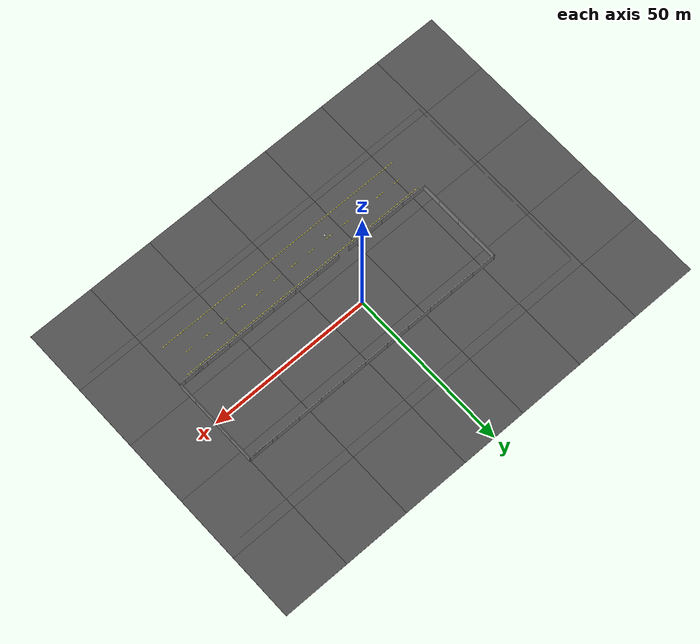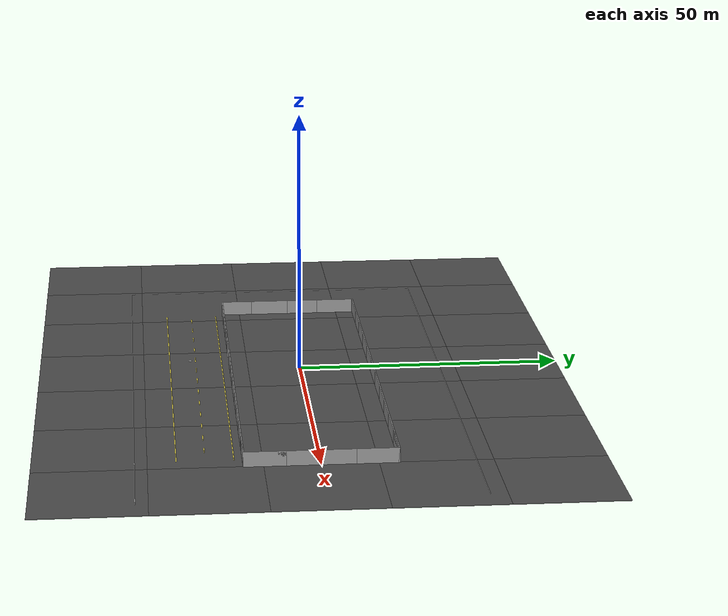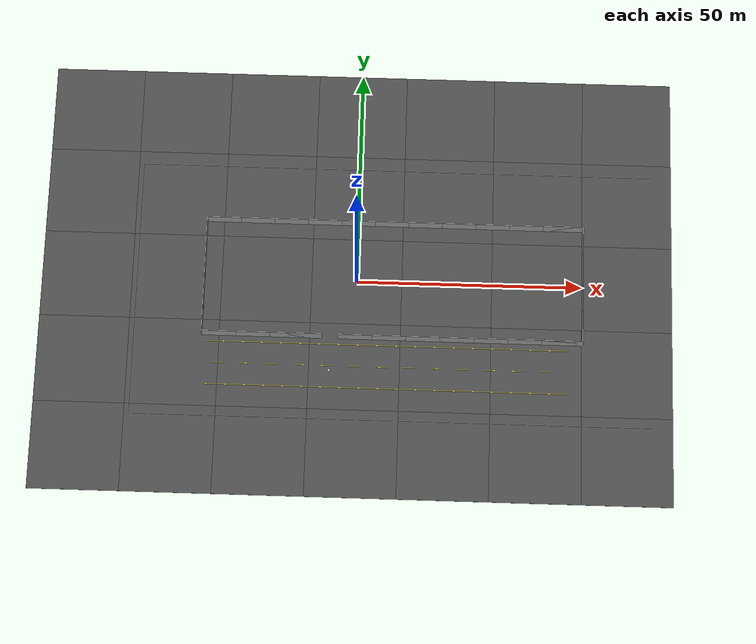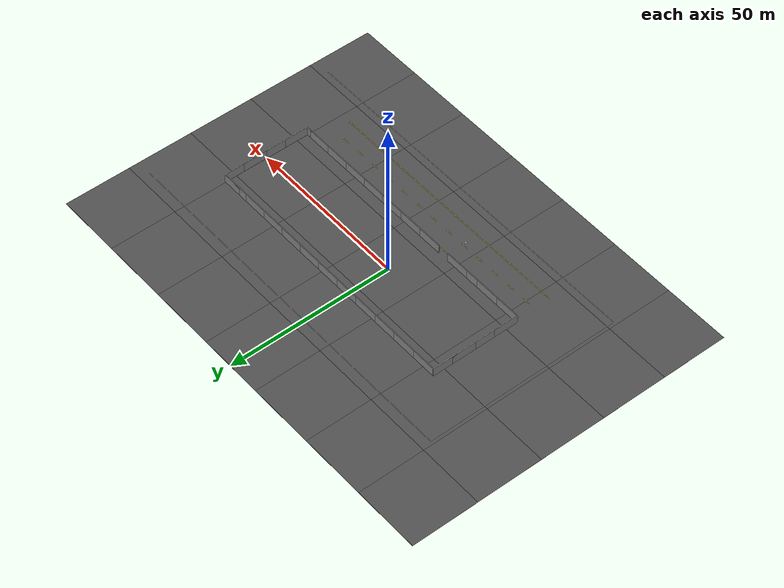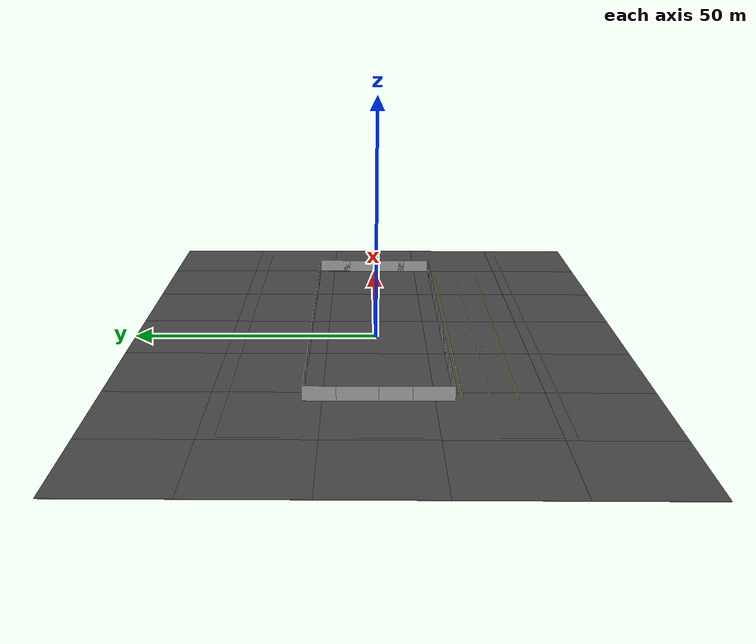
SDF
<sdf version="1.7">
 <world name="default">
  <light name="sun" type="directional">
   <pose>0 0 10 0 -0 0</pose>
   <diffuse>0.8 0.8 0.8 1</diffuse>
   <specular>0.2 0.2 0.2 1</specular>
   <attenuation>
    <range>1000</range>
    <constant>0.9</constant>
    <linear>0.01</linear>
    <quadratic>0.001</quadratic>
   </attenuation>
   <direction>-0.5 0.1 -0.9</direction>
   <spot><inner_angle>0</inner_angle><outer_angle>0</outer_angle><falloff>0</falloff></spot>
  </light>
  <gravity>0 0 -9.8</gravity>
  <magnetic_field>6e-06 2.3e-05 -4.2e-05</magnetic_field>
  <atmosphere type="adiabatic"/>
  <physics name="default_physics" default="0" type="ode">
   <max_step_size>0.001</max_step_size>
   <real_time_factor>1</real_time_factor>
   <real_time_update_rate>1000</real_time_update_rate>
  </physics>
  <scene><ambient>0.4 0.4 0.4 1</ambient><background>0.7 0.7 0.7 1</background><shadows>1</shadows></scene>
  <spherical_coordinates>
   <surface_model>EARTH_WGS84</surface_model>
   <latitude_deg>0</latitude_deg>
   <longitude_deg>0</longitude_deg>
   <elevation>0</elevation>
   <heading_deg>0</heading_deg>
  </spherical_coordinates>
  <audio><device>default</device></audio>
  <model name="grey_wall">
   <static>1</static>
   <link name="link">
    <pose>0 0 1.4 0 -0 0</pose>
    <collision name="collision"><geometry><box><size>7.5 0.2 2.8</size></box></geometry></collision>
    <visual name="visual">
     <cast_shadows>0</cast_shadows>
     <geometry><box><size>7.5 0.2 2.8</size></box></geometry>
     <material>
      <script>
       <uri>model://grey_wall/materials/scripts</uri>
       <uri>model://grey_wall/materials/textures</uri>
       <name>vrc/grey_wall</name>
      </script>
     </material>
    </visual>
   </link>
   <pose>0 -13.5 0 0 -0 0</pose>
  </model>
  <model name="grey_wall_0">
   <static>1</static>
   <link name="link">
    <pose>0 0 1.4 0 -0 0</pose>
    <collision name="collision"><geometry><box><size>7.5 0.2 2.8</size></box></geometry></collision>
    <visual name="visual">
     <cast_shadows>0</cast_shadows>
     <geometry><box><size>7.5 0.2 2.8</size></box></geometry>
     <material>
      <script>
       <uri>model://grey_wall/materials/scripts</uri>
       <uri>model://grey_wall/materials/textures</uri>
       <name>vrc/grey_wall</name>
      </script>
     </material>
    </visual>
   </link>
   <pose>7.5 -13.5 0 0 -0 0</pose>
  </model>
  <model name="grey_wall_1">
   <static>1</static>
   <link name="link">
    <pose>0 0 1.4 0 -0 0</pose>
    <collision name="collision"><geometry><box><size>7.5 0.2 2.8</size></box></geometry></collision>
    <visual name="visual">
     <cast_shadows>0</cast_shadows>
     <geometry><box><size>7.5 0.2 2.8</size></box></geometry>
     <material>
      <script>
       <uri>model://grey_wall/materials/scripts</uri>
       <uri>model://grey_wall/materials/textures</uri>
       <name>vrc/grey_wall</name>
      </script>
     </material>
    </visual>
   </link>
   <pose>-11 -13.5 0 0 -0 0</pose>
  </model>
  <model name="grey_wall_2">
   <static>1</static>
   <link name="link">
    <pose>0 0 1.4 0 -0 0</pose>
    <collision name="collision"><geometry><box><size>7.5 0.2 2.8</size></box></geometry></collision>
    <visual name="visual">
     <cast_shadows>0</cast_shadows>
     <geometry><box><size>7.5 0.2 2.8</size></box></geometry>
     <material>
      <script>
       <uri>model://grey_wall/materials/scripts</uri>
       <uri>model://grey_wall/materials/textures</uri>
       <name>vrc/grey_wall</name>
      </script>
     </material>
    </visual>
   </link>
   <pose>7.5 13.5 0 0 -0 0</pose>
  </model>
  <model name="grey_wall_3">
   <static>1</static>
   <link name="link">
    <pose>0 0 1.4 0 -0 0</pose>
    <collision name="collision"><geometry><box><size>7.5 0.2 2.8</size></box></geometry></collision>
    <visual name="visual">
     <cast_shadows>0</cast_shadows>
     <geometry><box><size>7.5 0.2 2.8</size></box></geometry>
     <material>
      <script>
       <uri>model://grey_wall/materials/scripts</uri>
       <uri>model://grey_wall/materials/textures</uri>
       <name>vrc/grey_wall</name>
      </script>
     </material>
    </visual>
   </link>
   <pose>0 13.5 0 0 -0 0</pose>
  </model>
  <model name="grey_wall_4">
   <static>1</static>
   <link name="link">
    <pose>0 0 1.4 0 -0 0</pose>
    <collision name="collision"><geometry><box><size>7.5 0.2 2.8</size></box></geometry></collision>
    <visual name="visual">
     <cast_shadows>0</cast_shadows>
     <geometry><box><size>7.5 0.2 2.8</size></box></geometry>
     <material>
      <script>
       <uri>model://grey_wall/materials/scripts</uri>
       <uri>model://grey_wall/materials/textures</uri>
       <name>vrc/grey_wall</name>
      </script>
     </material>
    </visual>
   </link>
   <pose>-7.5 13.5 0 0 -0 0</pose>
  </model>
  <model name="grey_wall_5">
   <static>1</static>
   <link name="link">
    <pose>0 0 1.4 0 -0 0</pose>
    <collision name="collision"><geometry><box><size>7.5 0.2 2.8</size></box></geometry></collision>
    <visual name="visual">
     <cast_shadows>0</cast_shadows>
     <geometry><box><size>7.5 0.2 2.8</size></box></geometry>
     <material>
      <script>
       <uri>model://grey_wall/materials/scripts</uri>
       <uri>model://grey_wall/materials/textures</uri>
       <name>vrc/grey_wall</name>
      </script>
     </material>
    </visual>
   </link>
   <pose>30 -13.5 0 0 -0 0</pose>
  </model>
  <model name="grey_wall_6">
   <static>1</static>
   <link name="link">
    <pose>0 0 1.4 0 -0 0</pose>
    <collision name="collision"><geometry><box><size>7.5 0.2 2.8</size></box></geometry></collision>
    <visual name="visual">
     <cast_shadows>0</cast_shadows>
     <geometry><box><size>7.5 0.2 2.8</size></box></geometry>
     <material>
      <script>
       <uri>model://grey_wall/materials/scripts</uri>
       <uri>model://grey_wall/materials/textures</uri>
       <name>vrc/grey_wall</name>
      </script>
     </material>
    </visual>
   </link>
   <pose>15 -13.5 0 0 -0 0</pose>
  </model>
  <model name="grey_wall_7">
   <static>1</static>
   <link name="link">
    <pose>0 0 1.4 0 -0 0</pose>
    <collision name="collision"><geometry><box><size>7.5 0.2 2.8</size></box></geometry></collision>
    <visual name="visual">
     <cast_shadows>0</cast_shadows>
     <geometry><box><size>7.5 0.2 2.8</size></box></geometry>
     <material>
      <script>
       <uri>model://grey_wall/materials/scripts</uri>
       <uri>model://grey_wall/materials/textures</uri>
       <name>vrc/grey_wall</name>
      </script>
     </material>
    </visual>
   </link>
   <pose>22.5 -13.5 0 0 -0 0</pose>
  </model>
  <model name="grey_wall_8">
   <static>1</static>
   <link name="link">
    <pose>0 0 1.4 0 -0 0</pose>
    <collision name="collision"><geometry><box><size>7.5 0.2 2.8</size></box></geometry></collision>
    <visual name="visual">
     <cast_shadows>0</cast_shadows>
     <geometry><box><size>7.5 0.2 2.8</size></box></geometry>
     <material>
      <script>
       <uri>model://grey_wall/materials/scripts</uri>
       <uri>model://grey_wall/materials/textures</uri>
       <name>vrc/grey_wall</name>
      </script>
     </material>
    </visual>
   </link>
   <pose>-15 -13.5 0 0 -0 0</pose>
  </model>
  <model name="grey_wall_9">
   <static>1</static>
   <link name="link">
    <pose>0 0 1.4 0 -0 0</pose>
    <collision name="collision"><geometry><box><size>7.5 0.2 2.8</size></box></geometry></collision>
    <visual name="visual">
     <cast_shadows>0</cast_shadows>
     <geometry><box><size>7.5 0.2 2.8</size></box></geometry>
     <material>
      <script>
       <uri>model://grey_wall/materials/scripts</uri>
       <uri>model://grey_wall/materials/textures</uri>
       <name>vrc/grey_wall</name>
      </script>
     </material>
    </visual>
   </link>
   <pose>-22.5 -13.5 0 0 -0 0</pose>
  </model>
  <model name="grey_wall_10">
   <static>1</static>
   <link name="link">
    <pose>0 0 1.4 0 -0 0</pose>
    <collision name="collision"><geometry><box><size>7.5 0.2 2.8</size></box></geometry></collision>
    <visual name="visual">
     <cast_shadows>0</cast_shadows>
     <geometry><box><size>7.5 0.2 2.8</size></box></geometry>
     <material>
      <script>
       <uri>model://grey_wall/materials/scripts</uri>
       <uri>model://grey_wall/materials/textures</uri>
       <name>vrc/grey_wall</name>
      </script>
     </material>
    </visual>
   </link>
   <pose>-30 -13.5 0 0 -0 0</pose>
  </model>
  <model name="grey_wall_11">
   <static>1</static>
   <link name="link">
    <pose>0 0 1.4 0 -0 0</pose>
    <collision name="collision"><geometry><box><size>7.5 0.2 2.8</size></box></geometry></collision>
    <visual name="visual">
     <cast_shadows>0</cast_shadows>
     <geometry><box><size>7.5 0.2 2.8</size></box></geometry>
     <material>
      <script>
       <uri>model://grey_wall/materials/scripts</uri>
       <uri>model://grey_wall/materials/textures</uri>
       <name>vrc/grey_wall</name>
      </script>
     </material>
    </visual>
   </link>
   <pose>15 13.5 0 0 -0 0</pose>
  </model>
  <model name="grey_wall_12">
   <static>1</static>
   <link name="link">
    <pose>0 0 1.4 0 -0 0</pose>
    <collision name="collision"><geometry><box><size>7.5 0.2 2.8</size></box></geometry></collision>
    <visual name="visual">
     <cast_shadows>0</cast_shadows>
     <geometry><box><size>7.5 0.2 2.8</size></box></geometry>
     <material>
      <script>
       <uri>model://grey_wall/materials/scripts</uri>
       <uri>model://grey_wall/materials/textures</uri>
       <name>vrc/grey_wall</name>
      </script>
     </material>
    </visual>
   </link>
   <pose>22.5 13.5 0 0 -0 0</pose>
  </model>
  <model name="grey_wall_13">
   <static>1</static>
   <link name="link">
    <pose>0 0 1.4 0 -0 0</pose>
    <collision name="collision"><geometry><box><size>7.5 0.2 2.8</size></box></geometry></collision>
    <visual name="visual">
     <cast_shadows>0</cast_shadows>
     <geometry><box><size>7.5 0.2 2.8</size></box></geometry>
     <material>
      <script>
       <uri>model://grey_wall/materials/scripts</uri>
       <uri>model://grey_wall/materials/textures</uri>
       <name>vrc/grey_wall</name>
      </script>
     </material>
    </visual>
   </link>
   <pose>30 13.5 0 0 -0 0</pose>
  </model>
  <model name="grey_wall_14">
   <static>1</static>
   <link name="link">
    <pose>0 0 1.4 0 -0 0</pose>
    <collision name="collision"><geometry><box><size>7.5 0.2 2.8</size></box></geometry></collision>
    <visual name="visual">
     <cast_shadows>0</cast_shadows>
     <geometry><box><size>7.5 0.2 2.8</size></box></geometry>
     <material>
      <script>
       <uri>model://grey_wall/materials/scripts</uri>
       <uri>model://grey_wall/materials/textures</uri>
       <name>vrc/grey_wall</name>
      </script>
     </material>
    </visual>
   </link>
   <pose>-15 13.5 0 0 -0 0</pose>
  </model>
  <model name="grey_wall_15">
   <static>1</static>
   <link name="link">
    <pose>0 0 1.4 0 -0 0</pose>
    <collision name="collision"><geometry><box><size>7.5 0.2 2.8</size></box></geometry></collision>
    <visual name="visual">
     <cast_shadows>0</cast_shadows>
     <geometry><box><size>7.5 0.2 2.8</size></box></geometry>
     <material>
      <script>
       <uri>model://grey_wall/materials/scripts</uri>
       <uri>model://grey_wall/materials/textures</uri>
       <name>vrc/grey_wall</name>
      </script>
     </material>
    </visual>
   </link>
   <pose>-22.5 13.5 0 0 -0 0</pose>
  </model>
  <model name="grey_wall_16">
   <static>1</static>
   <link name="link">
    <pose>0 0 1.4 0 -0 0</pose>
    <collision name="collision"><geometry><box><size>7.5 0.2 2.8</size></box></geometry></collision>
    <visual name="visual">
     <cast_shadows>0</cast_shadows>
     <geometry><box><size>7.5 0.2 2.8</size></box></geometry>
     <material>
      <script>
       <uri>model://grey_wall/materials/scripts</uri>
       <uri>model://grey_wall/materials/textures</uri>
       <name>vrc/grey_wall</name>
      </script>
     </material>
    </visual>
   </link>
   <pose>-30 13.5 0 0 -0 0</pose>
  </model>
  <model name="grey_wall_17">
   <static>1</static>
   <link name="link">
    <pose>0 0 1.4 0 -0 0</pose>
    <collision name="collision"><geometry><box><size>7.5 0.2 2.8</size></box></geometry></collision>
    <visual name="visual">
     <cast_shadows>0</cast_shadows>
     <geometry><box><size>7.5 0.2 2.8</size></box></geometry>
     <material>
      <script>
       <uri>model://grey_wall/materials/scripts</uri>
       <uri>model://grey_wall/materials/textures</uri>
       <name>vrc/grey_wall</name>
      </script>
     </material>
    </visual>
   </link>
   <pose>50.15 -9.85 0 0 -0 1.5708</pose>
  </model>
  <model name="grey_wall_18">
   <static>1</static>
   <link name="link">
    <pose>0 0 1.4 0 -0 0</pose>
    <collision name="collision"><geometry><box><size>7.5 0.2 2.8</size></box></geometry></collision>
    <visual name="visual">
     <cast_shadows>0</cast_shadows>
     <geometry><box><size>7.5 0.2 2.8</size></box></geometry>
     <material>
      <script>
       <uri>model://grey_wall/materials/scripts</uri>
       <uri>model://grey_wall/materials/textures</uri>
       <name>vrc/grey_wall</name>
      </script>
     </material>
    </visual>
   </link>
   <pose>50.15 9.85 0 0 -0 1.5708</pose>
  </model>
  <model name="grey_wall_19">
   <static>1</static>
   <link name="link">
    <pose>0 0 1.4 0 -0 0</pose>
    <collision name="collision"><geometry><box><size>7.5 0.2 2.8</size></box></geometry></collision>
    <visual name="visual">
     <cast_shadows>0</cast_shadows>
     <geometry><box><size>7.5 0.2 2.8</size></box></geometry>
     <material>
      <script>
       <uri>model://grey_wall/materials/scripts</uri>
       <uri>model://grey_wall/materials/textures</uri>
       <name>vrc/grey_wall</name>
      </script>
     </material>
    </visual>
   </link>
   <pose>50.15 -3.75 0 0 -0 1.5708</pose>
  </model>
  <model name="grey_wall_20">
   <static>1</static>
   <link name="link">
    <pose>0 0 1.4 0 -0 0</pose>
    <collision name="collision"><geometry><box><size>7.5 0.2 2.8</size></box></geometry></collision>
    <visual name="visual">
     <cast_shadows>0</cast_shadows>
     <geometry><box><size>7.5 0.2 2.8</size></box></geometry>
     <material>
      <script>
       <uri>model://grey_wall/materials/scripts</uri>
       <uri>model://grey_wall/materials/textures</uri>
       <name>vrc/grey_wall</name>
      </script>
     </material>
    </visual>
   </link>
   <pose>50.15 3.75 0 0 -0 1.5708</pose>
  </model>
  <model name="grey_wall_21">
   <static>1</static>
   <link name="link">
    <pose>0 0 1.4 0 -0 0</pose>
    <collision name="collision"><geometry><box><size>7.5 0.2 2.8</size></box></geometry></collision>
    <visual name="visual">
     <cast_shadows>0</cast_shadows>
     <geometry><box><size>7.5 0.2 2.8</size></box></geometry>
     <material>
      <script>
       <uri>model://grey_wall/materials/scripts</uri>
       <uri>model://grey_wall/materials/textures</uri>
       <name>vrc/grey_wall</name>
      </script>
     </material>
    </visual>
   </link>
   <pose>-33.85 3.75 0 0 -0 1.5708</pose>
  </model>
  <model name="grey_wall_22">
   <static>1</static>
   <link name="link">
    <pose>0 0 1.4 0 -0 0</pose>
    <collision name="collision"><geometry><box><size>7.5 0.2 2.8</size></box></geometry></collision>
    <visual name="visual">
     <cast_shadows>0</cast_shadows>
     <geometry><box><size>7.5 0.2 2.8</size></box></geometry>
     <material>
      <script>
       <uri>model://grey_wall/materials/scripts</uri>
       <uri>model://grey_wall/materials/textures</uri>
       <name>vrc/grey_wall</name>
      </script>
     </material>
    </visual>
   </link>
   <pose>-33.85 9.85 0 0 -0 1.5708</pose>
  </model>
  <model name="grey_wall_23">
   <static>1</static>
   <link name="link">
    <pose>0 0 1.4 0 -0 0</pose>
    <collision name="collision"><geometry><box><size>7.5 0.2 2.8</size></box></geometry></collision>
    <visual name="visual">
     <cast_shadows>0</cast_shadows>
     <geometry><box><size>7.5 0.2 2.8</size></box></geometry>
     <material>
      <script>
       <uri>model://grey_wall/materials/scripts</uri>
       <uri>model://grey_wall/materials/textures</uri>
       <name>vrc/grey_wall</name>
      </script>
     </material>
    </visual>
   </link>
   <pose>-33.85 -3.75 0 0 -0 1.5708</pose>
  </model>
  <model name="grey_wall_24">
   <static>1</static>
   <link name="link">
    <pose>0 0 1.4 0 -0 0</pose>
    <collision name="collision"><geometry><box><size>7.5 0.2 2.8</size></box></geometry></collision>
    <visual name="visual">
     <cast_shadows>0</cast_shadows>
     <geometry><box><size>7.5 0.2 2.8</size></box></geometry>
     <material>
      <script>
       <uri>model://grey_wall/materials/scripts</uri>
       <uri>model://grey_wall/materials/textures</uri>
       <name>vrc/grey_wall</name>
      </script>
     </material>
    </visual>
   </link>
   <pose>-33.85 -9.85 0 0 -0 1.5708</pose>
  </model>
  <model name="asphalt_plane">
   <static>1</static>
   <link name="link">
    <collision name="collision"><geometry><box><size>20 20 0.1</size></box></geometry></collision>
    <visual name="visual">
     <cast_shadows>0</cast_shadows>
     <geometry><box><size>20 20 0.1</size></box></geometry>
     <material>
      <script>
       <uri>model://asphalt_plane/materials/scripts</uri>
       <uri>model://asphalt_plane/materials/textures</uri>
       <name>vrc/asphalt</name>
      </script>
     </material>
    </visual>
   </link>
  </model>
  <model name="asphalt_plane_0">
   <static>1</static>
   <link name="link">
    <collision name="collision"><geometry><box><size>20 20 0.1</size></box></geometry></collision>
    <visual name="visual">
     <cast_shadows>0</cast_shadows>
     <geometry><box><size>20 20 0.1</size></box></geometry>
     <material>
      <script>
       <uri>model://asphalt_plane/materials/scripts</uri>
       <uri>model://asphalt_plane/materials/textures</uri>
       <name>vrc/asphalt</name>
      </script>
     </material>
    </visual>
   </link>
   <pose>-20 0 0 0 -0 0</pose>
  </model>
  <model name="asphalt_plane_1">
   <static>1</static>
   <link name="link">
    <collision name="collision"><geometry><box><size>20 20 0.1</size></box></geometry></collision>
    <visual name="visual">
     <cast_shadows>0</cast_shadows>
     <geometry><box><size>20 20 0.1</size></box></geometry>
     <material>
      <script>
       <uri>model://asphalt_plane/materials/scripts</uri>
       <uri>model://asphalt_plane/materials/textures</uri>
       <name>vrc/asphalt</name>
      </script>
     </material>
    </visual>
   </link>
   <pose>-40 0 0 0 -0 0</pose>
  </model>
  <model name="asphalt_plane_2">
   <static>1</static>
   <link name="link">
    <collision name="collision"><geometry><box><size>20 20 0.1</size></box></geometry></collision>
    <visual name="visual">
     <cast_shadows>0</cast_shadows>
     <geometry><box><size>20 20 0.1</size></box></geometry>
     <material>
      <script>
       <uri>model://asphalt_plane/materials/scripts</uri>
       <uri>model://asphalt_plane/materials/textures</uri>
       <name>vrc/asphalt</name>
      </script>
     </material>
    </visual>
   </link>
   <pose>20 0 0 0 -0 0</pose>
  </model>
  <model name="asphalt_plane_3">
   <static>1</static>
   <link name="link">
    <collision name="collision"><geometry><box><size>20 20 0.1</size></box></geometry></collision>
    <visual name="visual">
     <cast_shadows>0</cast_shadows>
     <geometry><box><size>20 20 0.1</size></box></geometry>
     <material>
      <script>
       <uri>model://asphalt_plane/materials/scripts</uri>
       <uri>model://asphalt_plane/materials/textures</uri>
       <name>vrc/asphalt</name>
      </script>
     </material>
    </visual>
   </link>
   <pose>40 0 0 0 -0 0</pose>
  </model>
  <model name="asphalt_plane_4">
   <static>1</static>
   <link name="link">
    <collision name="collision"><geometry><box><size>20 20 0.1</size></box></geometry></collision>
    <visual name="visual">
     <cast_shadows>0</cast_shadows>
     <geometry><box><size>20 20 0.1</size></box></geometry>
     <material>
      <script>
       <uri>model://asphalt_plane/materials/scripts</uri>
       <uri>model://asphalt_plane/materials/textures</uri>
       <name>vrc/asphalt</name>
      </script>
     </material>
    </visual>
   </link>
   <pose>0 -20 0 0 -0 0</pose>
  </model>
  <model name="asphalt_plane_5">
   <static>1</static>
   <link name="link">
    <collision name="collision"><geometry><box><size>20 20 0.1</size></box></geometry></collision>
    <visual name="visual">
     <cast_shadows>0</cast_shadows>
     <geometry><box><size>20 20 0.1</size></box></geometry>
     <material>
      <script>
       <uri>model://asphalt_plane/materials/scripts</uri>
       <uri>model://asphalt_plane/materials/textures</uri>
       <name>vrc/asphalt</name>
      </script>
     </material>
    </visual>
   </link>
   <pose>-20 -20 0 0 -0 0</pose>
  </model>
  <model name="asphalt_plane_6">
   <static>1</static>
   <link name="link">
    <collision name="collision"><geometry><box><size>20 20 0.1</size></box></geometry></collision>
    <visual name="visual">
     <cast_shadows>0</cast_shadows>
     <geometry><box><size>20 20 0.1</size></box></geometry>
     <material>
      <script>
       <uri>model://asphalt_plane/materials/scripts</uri>
       <uri>model://asphalt_plane/materials/textures</uri>
       <name>vrc/asphalt</name>
      </script>
     </material>
    </visual>
   </link>
   <pose>-40 -20 0 0 -0 0</pose>
  </model>
  <model name="asphalt_plane_7">
   <static>1</static>
   <link name="link">
    <collision name="collision"><geometry><box><size>20 20 0.1</size></box></geometry></collision>
    <visual name="visual">
     <cast_shadows>0</cast_shadows>
     <geometry><box><size>20 20 0.1</size></box></geometry>
     <material>
      <script>
       <uri>model://asphalt_plane/materials/scripts</uri>
       <uri>model://asphalt_plane/materials/textures</uri>
       <name>vrc/asphalt</name>
      </script>
     </material>
    </visual>
   </link>
   <pose>20 -20 0 0 -0 0</pose>
  </model>
  <model name="asphalt_plane_8">
   <static>1</static>
   <link name="link">
    <collision name="collision"><geometry><box><size>20 20 0.1</size></box></geometry></collision>
    <visual name="visual">
     <cast_shadows>0</cast_shadows>
     <geometry><box><size>20 20 0.1</size></box></geometry>
     <material>
      <script>
       <uri>model://asphalt_plane/materials/scripts</uri>
       <uri>model://asphalt_plane/materials/textures</uri>
       <name>vrc/asphalt</name>
      </script>
     </material>
    </visual>
   </link>
   <pose>40 -20 0 0 -0 0</pose>
  </model>
  <model name="asphalt_plane_9">
   <static>1</static>
   <link name="link">
    <collision name="collision"><geometry><box><size>20 20 0.1</size></box></geometry></collision>
    <visual name="visual">
     <cast_shadows>0</cast_shadows>
     <geometry><box><size>20 20 0.1</size></box></geometry>
     <material>
      <script>
       <uri>model://asphalt_plane/materials/scripts</uri>
       <uri>model://asphalt_plane/materials/textures</uri>
       <name>vrc/asphalt</name>
      </script>
     </material>
    </visual>
   </link>
   <pose>-40 20 0 0 -0 0</pose>
  </model>
  <model name="asphalt_plane_10">
   <static>1</static>
   <link name="link">
    <collision name="collision"><geometry><box><size>20 20 0.1</size></box></geometry></collision>
    <visual name="visual">
     <cast_shadows>0</cast_shadows>
     <geometry><box><size>20 20 0.1</size></box></geometry>
     <material>
      <script>
       <uri>model://asphalt_plane/materials/scripts</uri>
       <uri>model://asphalt_plane/materials/textures</uri>
       <name>vrc/asphalt</name>
      </script>
     </material>
    </visual>
   </link>
   <pose>-20 20 0 0 -0 0</pose>
  </model>
  <model name="asphalt_plane_11">
   <static>1</static>
   <link name="link">
    <collision name="collision"><geometry><box><size>20 20 0.1</size></box></geometry></collision>
    <visual name="visual">
     <cast_shadows>0</cast_shadows>
     <geometry><box><size>20 20 0.1</size></box></geometry>
     <material>
      <script>
       <uri>model://asphalt_plane/materials/scripts</uri>
       <uri>model://asphalt_plane/materials/textures</uri>
       <name>vrc/asphalt</name>
      </script>
     </material>
    </visual>
   </link>
   <pose>0 20 0 0 -0 0</pose>
  </model>
  <model name="asphalt_plane_12">
   <static>1</static>
   <link name="link">
    <collision name="collision"><geometry><box><size>20 20 0.1</size></box></geometry></collision>
    <visual name="visual">
     <cast_shadows>0</cast_shadows>
     <geometry><box><size>20 20 0.1</size></box></geometry>
     <material>
      <script>
       <uri>model://asphalt_plane/materials/scripts</uri>
       <uri>model://asphalt_plane/materials/textures</uri>
       <name>vrc/asphalt</name>
      </script>
     </material>
    </visual>
   </link>
   <pose>20 20 0 0 -0 0</pose>
  </model>
  <model name="asphalt_plane_13">
   <static>1</static>
   <link name="link">
    <collision name="collision"><geometry><box><size>20 20 0.1</size></box></geometry></collision>
    <visual name="visual">
     <cast_shadows>0</cast_shadows>
     <geometry><box><size>20 20 0.1</size></box></geometry>
     <material>
      <script>
       <uri>model://asphalt_plane/materials/scripts</uri>
       <uri>model://asphalt_plane/materials/textures</uri>
       <name>vrc/asphalt</name>
      </script>
     </material>
    </visual>
   </link>
   <pose>40 20 0 0 -0 0</pose>
  </model>
  <model name="yellow_point">
   <static>1</static>
   <link name="link">
    <collision name="collision">
     <geometry><plane><normal>0 0 1</normal><size>0.5 0.5</size></plane></geometry>
     <surface><friction><ode><mu>100</mu><mu2>50</mu2></ode></friction></surface>
    </collision>
    <visual name="visual">
     <cast_shadows>0</cast_shadows>
     <geometry><plane><normal>0 0 1</normal><size>0.5 0.5</size></plane></geometry>
     <material>
      <script>
       <uri>model://yellow_point/materials/scripts</uri>
       <uri>model://yellow_point/materials/textures/</uri>
       <name>MyGroundPlane/Image</name>
      </script>
     </material>
    </visual>
   </link>
   <pose>-5.5 -21 0.06 0 -0 0</pose>
  </model>
  <model name="asphalt_plane_14">
   <static>1</static>
   <link name="link">
    <collision name="collision"><geometry><box><size>20 20 0.1</size></box></geometry></collision>
    <visual name="visual">
     <cast_shadows>0</cast_shadows>
     <geometry><box><size>20 20 0.1</size></box></geometry>
     <material>
      <script>
       <uri>model://asphalt_plane/materials/scripts</uri>
       <uri>model://asphalt_plane/materials/textures</uri>
       <name>vrc/asphalt</name>
      </script>
     </material>
    </visual>
   </link>
   <pose>60 0 0 0 -0 0</pose>
  </model>
  <model name="asphalt_plane_15">
   <static>1</static>
   <link name="link">
    <collision name="collision"><geometry><box><size>20 20 0.1</size></box></geometry></collision>
    <visual name="visual">
     <cast_shadows>0</cast_shadows>
     <geometry><box><size>20 20 0.1</size></box></geometry>
     <material>
      <script>
       <uri>model://asphalt_plane/materials/scripts</uri>
       <uri>model://asphalt_plane/materials/textures</uri>
       <name>vrc/asphalt</name>
      </script>
     </material>
    </visual>
   </link>
   <pose>60 20 0 0 -0 0</pose>
  </model>
  <model name="asphalt_plane_16">
   <static>1</static>
   <link name="link">
    <collision name="collision"><geometry><box><size>20 20 0.1</size></box></geometry></collision>
    <visual name="visual">
     <cast_shadows>0</cast_shadows>
     <geometry><box><size>20 20 0.1</size></box></geometry>
     <material>
      <script>
       <uri>model://asphalt_plane/materials/scripts</uri>
       <uri>model://asphalt_plane/materials/textures</uri>
       <name>vrc/asphalt</name>
      </script>
     </material>
    </visual>
   </link>
   <pose>60 -20 0 0 -0 0</pose>
  </model>
  <model name="asphalt_plane_17">
   <static>1</static>
   <link name="link">
    <collision name="collision"><geometry><box><size>20 20 0.1</size></box></geometry></collision>
    <visual name="visual">
     <cast_shadows>0</cast_shadows>
     <geometry><box><size>20 20 0.1</size></box></geometry>
     <material>
      <script>
       <uri>model://asphalt_plane/materials/scripts</uri>
       <uri>model://asphalt_plane/materials/textures</uri>
       <name>vrc/asphalt</name>
      </script>
     </material>
    </visual>
   </link>
   <pose>40 -40 0 0 -0 0</pose>
  </model>
  <model name="asphalt_plane_18">
   <static>1</static>
   <link name="link">
    <collision name="collision"><geometry><box><size>20 20 0.1</size></box></geometry></collision>
    <visual name="visual">
     <cast_shadows>0</cast_shadows>
     <geometry><box><size>20 20 0.1</size></box></geometry>
     <material>
      <script>
       <uri>model://asphalt_plane/materials/scripts</uri>
       <uri>model://asphalt_plane/materials/textures</uri>
       <name>vrc/asphalt</name>
      </script>
     </material>
    </visual>
   </link>
   <pose>60 -40 0 0 -0 0</pose>
  </model>
  <model name="asphalt_plane_19">
   <static>1</static>
   <link name="link">
    <collision name="collision"><geometry><box><size>20 20 0.1</size></box></geometry></collision>
    <visual name="visual">
     <cast_shadows>0</cast_shadows>
     <geometry><box><size>20 20 0.1</size></box></geometry>
     <material>
      <script>
       <uri>model://asphalt_plane/materials/scripts</uri>
       <uri>model://asphalt_plane/materials/textures</uri>
       <name>vrc/asphalt</name>
      </script>
     </material>
    </visual>
   </link>
   <pose>20 -40 0 0 -0 0</pose>
  </model>
  <model name="asphalt_plane_20">
   <static>1</static>
   <link name="link">
    <collision name="collision"><geometry><box><size>20 20 0.1</size></box></geometry></collision>
    <visual name="visual">
     <cast_shadows>0</cast_shadows>
     <geometry><box><size>20 20 0.1</size></box></geometry>
     <material>
      <script>
       <uri>model://asphalt_plane/materials/scripts</uri>
       <uri>model://asphalt_plane/materials/textures</uri>
       <name>vrc/asphalt</name>
      </script>
     </material>
    </visual>
   </link>
   <pose>0 -40 0 0 -0 0</pose>
  </model>
  <model name="asphalt_plane_21">
   <static>1</static>
   <link name="link">
    <collision name="collision"><geometry><box><size>20 20 0.1</size></box></geometry></collision>
    <visual name="visual">
     <cast_shadows>0</cast_shadows>
     <geometry><box><size>20 20 0.1</size></box></geometry>
     <material>
      <script>
       <uri>model://asphalt_plane/materials/scripts</uri>
       <uri>model://asphalt_plane/materials/textures</uri>
       <name>vrc/asphalt</name>
      </script>
     </material>
    </visual>
   </link>
   <pose>-20 -40 0 0 -0 0</pose>
  </model>
  <model name="asphalt_plane_22">
   <static>1</static>
   <link name="link">
    <collision name="collision"><geometry><box><size>20 20 0.1</size></box></geometry></collision>
    <visual name="visual">
     <cast_shadows>0</cast_shadows>
     <geometry><box><size>20 20 0.1</size></box></geometry>
     <material>
      <script>
       <uri>model://asphalt_plane/materials/scripts</uri>
       <uri>model://asphalt_plane/materials/textures</uri>
       <name>vrc/asphalt</name>
      </script>
     </material>
    </visual>
   </link>
   <pose>-40 -40 0 0 -0 0</pose>
  </model>
  <model name="asphalt_plane_23">
   <static>1</static>
   <link name="link">
    <collision name="collision"><geometry><box><size>20 20 0.1</size></box></geometry></collision>
    <visual name="visual">
     <cast_shadows>0</cast_shadows>
     <geometry><box><size>20 20 0.1</size></box></geometry>
     <material>
      <script>
       <uri>model://asphalt_plane/materials/scripts</uri>
       <uri>model://asphalt_plane/materials/textures</uri>
       <name>vrc/asphalt</name>
      </script>
     </material>
    </visual>
   </link>
   <pose>-60 -40 0 0 -0 0</pose>
  </model>
  <model name="asphalt_plane_24">
   <static>1</static>
   <link name="link">
    <collision name="collision"><geometry><box><size>20 20 0.1</size></box></geometry></collision>
    <visual name="visual">
     <cast_shadows>0</cast_shadows>
     <geometry><box><size>20 20 0.1</size></box></geometry>
     <material>
      <script>
       <uri>model://asphalt_plane/materials/scripts</uri>
       <uri>model://asphalt_plane/materials/textures</uri>
       <name>vrc/asphalt</name>
      </script>
     </material>
    </visual>
   </link>
   <pose>-60 -20 0 0 -0 0</pose>
  </model>
  <model name="asphalt_plane_25">
   <static>1</static>
   <link name="link">
    <collision name="collision"><geometry><box><size>20 20 0.1</size></box></geometry></collision>
    <visual name="visual">
     <cast_shadows>0</cast_shadows>
     <geometry><box><size>20 20 0.1</size></box></geometry>
     <material>
      <script>
       <uri>model://asphalt_plane/materials/scripts</uri>
       <uri>model://asphalt_plane/materials/textures</uri>
       <name>vrc/asphalt</name>
      </script>
     </material>
    </visual>
   </link>
   <pose>-60 0 0 0 -0 0</pose>
  </model>
  <model name="asphalt_plane_26">
   <static>1</static>
   <link name="link">
    <collision name="collision"><geometry><box><size>20 20 0.1</size></box></geometry></collision>
    <visual name="visual">
     <cast_shadows>0</cast_shadows>
     <geometry><box><size>20 20 0.1</size></box></geometry>
     <material>
      <script>
       <uri>model://asphalt_plane/materials/scripts</uri>
       <uri>model://asphalt_plane/materials/textures</uri>
       <name>vrc/asphalt</name>
      </script>
     </material>
    </visual>
   </link>
   <pose>-60 20 0 0 -0 0</pose>
  </model>
  <model name="asphalt_plane_27">
   <static>1</static>
   <link name="link">
    <collision name="collision"><geometry><box><size>20 20 0.1</size></box></geometry></collision>
    <visual name="visual">
     <cast_shadows>0</cast_shadows>
     <geometry><box><size>20 20 0.1</size></box></geometry>
     <material>
      <script>
       <uri>model://asphalt_plane/materials/scripts</uri>
       <uri>model://asphalt_plane/materials/textures</uri>
       <name>vrc/asphalt</name>
      </script>
     </material>
    </visual>
   </link>
   <pose>-60 40 0 0 -0 0</pose>
  </model>
  <model name="asphalt_plane_28">
   <static>1</static>
   <link name="link">
    <collision name="collision"><geometry><box><size>20 20 0.1</size></box></geometry></collision>
    <visual name="visual">
     <cast_shadows>0</cast_shadows>
     <geometry><box><size>20 20 0.1</size></box></geometry>
     <material>
      <script>
       <uri>model://asphalt_plane/materials/scripts</uri>
       <uri>model://asphalt_plane/materials/textures</uri>
       <name>vrc/asphalt</name>
      </script>
     </material>
    </visual>
   </link>
   <pose>-40 40 0 0 -0 0</pose>
  </model>
  <model name="asphalt_plane_29">
   <static>1</static>
   <link name="link">
    <collision name="collision"><geometry><box><size>20 20 0.1</size></box></geometry></collision>
    <visual name="visual">
     <cast_shadows>0</cast_shadows>
     <geometry><box><size>20 20 0.1</size></box></geometry>
     <material>
      <script>
       <uri>model://asphalt_plane/materials/scripts</uri>
       <uri>model://asphalt_plane/materials/textures</uri>
       <name>vrc/asphalt</name>
      </script>
     </material>
    </visual>
   </link>
   <pose>-20 40 0 0 -0 0</pose>
  </model>
  <model name="asphalt_plane_30">
   <static>1</static>
   <link name="link">
    <collision name="collision"><geometry><box><size>20 20 0.1</size></box></geometry></collision>
    <visual name="visual">
     <cast_shadows>0</cast_shadows>
     <geometry><box><size>20 20 0.1</size></box></geometry>
     <material>
      <script>
       <uri>model://asphalt_plane/materials/scripts</uri>
       <uri>model://asphalt_plane/materials/textures</uri>
       <name>vrc/asphalt</name>
      </script>
     </material>
    </visual>
   </link>
   <pose>0 40 0 0 -0 0</pose>
  </model>
  <model name="asphalt_plane_31">
   <static>1</static>
   <link name="link">
    <collision name="collision"><geometry><box><size>20 20 0.1</size></box></geometry></collision>
    <visual name="visual">
     <cast_shadows>0</cast_shadows>
     <geometry><box><size>20 20 0.1</size></box></geometry>
     <material>
      <script>
       <uri>model://asphalt_plane/materials/scripts</uri>
       <uri>model://asphalt_plane/materials/textures</uri>
       <name>vrc/asphalt</name>
      </script>
     </material>
    </visual>
   </link>
   <pose>20 40 0 0 -0 0</pose>
  </model>
  <model name="asphalt_plane_32">
   <static>1</static>
   <link name="link">
    <collision name="collision"><geometry><box><size>20 20 0.1</size></box></geometry></collision>
    <visual name="visual">
     <cast_shadows>0</cast_shadows>
     <geometry><box><size>20 20 0.1</size></box></geometry>
     <material>
      <script>
       <uri>model://asphalt_plane/materials/scripts</uri>
       <uri>model://asphalt_plane/materials/textures</uri>
       <name>vrc/asphalt</name>
      </script>
     </material>
    </visual>
   </link>
   <pose>40 40 0 0 -0 0</pose>
  </model>
  <model name="asphalt_plane_33">
   <static>1</static>
   <link name="link">
    <collision name="collision"><geometry><box><size>20 20 0.1</size></box></geometry></collision>
    <visual name="visual">
     <cast_shadows>0</cast_shadows>
     <geometry><box><size>20 20 0.1</size></box></geometry>
     <material>
      <script>
       <uri>model://asphalt_plane/materials/scripts</uri>
       <uri>model://asphalt_plane/materials/textures</uri>
       <name>vrc/asphalt</name>
      </script>
     </material>
    </visual>
   </link>
   <pose>60 40 0 0 -0 0</pose>
  </model>
  <model name="54m_redline">
   <static>1</static>
   <link name="link">
    <collision name="collision">
     <geometry><plane><normal>0 0 1</normal><size>59.3 0.1</size></plane></geometry>
     <surface><friction><ode><mu>100</mu><mu2>50</mu2></ode></friction></surface>
    </collision>
    <visual name="visual">
     <cast_shadows>0</cast_shadows>
     <geometry><plane><normal>0 0 1</normal><size>59.3 0.1</size></plane></geometry>
     <material>
      <script>
       <uri>model://54m_redline/materials/scripts</uri>
       <uri>model://54m_redline/materials/textures/</uri>
       <name>MyGroundPlane/Image</name>
      </script>
     </material>
    </visual>
   </link>
   <pose>65.3 -2.6 0.06 0 -0 1.5707</pose>
  </model>
  <model name="54m_redline_0">
   <static>1</static>
   <link name="link">
    <collision name="collision">
     <geometry><plane><normal>0 0 1</normal><size>59.3 0.1</size></plane></geometry>
     <surface><friction><ode><mu>100</mu><mu2>50</mu2></ode></friction></surface>
    </collision>
    <visual name="visual">
     <cast_shadows>0</cast_shadows>
     <geometry><plane><normal>0 0 1</normal><size>59.3 0.1</size></plane></geometry>
     <material>
      <script>
       <uri>model://54m_redline/materials/scripts</uri>
       <uri>model://54m_redline/materials/textures/</uri>
       <name>MyGroundPlane/Image</name>
      </script>
     </material>
    </visual>
   </link>
   <pose>-49 -2.6 0.06 0 -0 1.5707</pose>
  </model>
  <model name="grey_wall_25">
   <static>1</static>
   <link name="link">
    <pose>0 0 1.4 0 -0 0</pose>
    <collision name="collision"><geometry><box><size>7.5 0.2 2.8</size></box></geometry></collision>
    <visual name="visual">
     <cast_shadows>0</cast_shadows>
     <geometry><box><size>7.5 0.2 2.8</size></box></geometry>
     <material>
      <script>
       <uri>model://grey_wall/materials/scripts</uri>
       <uri>model://grey_wall/materials/textures</uri>
       <name>vrc/grey_wall</name>
      </script>
     </material>
    </visual>
   </link>
   <pose>37.5 -13.5 0 0 -0 0</pose>
  </model>
  <model name="grey_wall_26">
   <static>1</static>
   <link name="link">
    <pose>0 0 1.4 0 -0 0</pose>
    <collision name="collision"><geometry><box><size>7.5 0.2 2.8</size></box></geometry></collision>
    <visual name="visual">
     <cast_shadows>0</cast_shadows>
     <geometry><box><size>7.5 0.2 2.8</size></box></geometry>
     <material>
      <script>
       <uri>model://grey_wall/materials/scripts</uri>
       <uri>model://grey_wall/materials/textures</uri>
       <name>vrc/grey_wall</name>
      </script>
     </material>
    </visual>
   </link>
   <pose>45 -13.5 0 0 -0 0</pose>
  </model>
  <model name="grey_wall_27">
   <static>1</static>
   <link name="link">
    <pose>0 0 1.4 0 -0 0</pose>
    <collision name="collision"><geometry><box><size>7.5 0.2 2.8</size></box></geometry></collision>
    <visual name="visual">
     <cast_shadows>0</cast_shadows>
     <geometry><box><size>7.5 0.2 2.8</size></box></geometry>
     <material>
      <script>
       <uri>model://grey_wall/materials/scripts</uri>
       <uri>model://grey_wall/materials/textures</uri>
       <name>vrc/grey_wall</name>
      </script>
     </material>
    </visual>
   </link>
   <pose>46.5 -13.5 0 0 -0 0</pose>
  </model>
  <model name="grey_wall_28">
   <static>1</static>
   <link name="link">
    <pose>0 0 1.4 0 -0 0</pose>
    <collision name="collision"><geometry><box><size>7.5 0.2 2.8</size></box></geometry></collision>
    <visual name="visual">
     <cast_shadows>0</cast_shadows>
     <geometry><box><size>7.5 0.2 2.8</size></box></geometry>
     <material>
      <script>
       <uri>model://grey_wall/materials/scripts</uri>
       <uri>model://grey_wall/materials/textures</uri>
       <name>vrc/grey_wall</name>
      </script>
     </material>
    </visual>
   </link>
   <pose>37.5 13.5 0 0 -0 0</pose>
  </model>
  <model name="grey_wall_29">
   <static>1</static>
   <link name="link">
    <pose>0 0 1.4 0 -0 0</pose>
    <collision name="collision"><geometry><box><size>7.5 0.2 2.8</size></box></geometry></collision>
    <visual name="visual">
     <cast_shadows>0</cast_shadows>
     <geometry><box><size>7.5 0.2 2.8</size></box></geometry>
     <material>
      <script>
       <uri>model://grey_wall/materials/scripts</uri>
       <uri>model://grey_wall/materials/textures</uri>
       <name>vrc/grey_wall</name>
      </script>
     </material>
    </visual>
   </link>
   <pose>45 13.5 0 0 -0 0</pose>
  </model>
  <model name="grey_wall_30">
   <static>1</static>
   <link name="link">
    <pose>0 0 1.4 0 -0 0</pose>
    <collision name="collision"><geometry><box><size>7.5 0.2 2.8</size></box></geometry></collision>
    <visual name="visual">
     <cast_shadows>0</cast_shadows>
     <geometry><box><size>7.5 0.2 2.8</size></box></geometry>
     <material>
      <script>
       <uri>model://grey_wall/materials/scripts</uri>
       <uri>model://grey_wall/materials/textures</uri>
       <name>vrc/grey_wall</name>
      </script>
     </material>
    </visual>
   </link>
   <pose>46.5 13.5 0 0 -0 0</pose>
  </model>
  <model name="92m_redline">
   <static>1</static>
   <link name="link">
    <collision name="collision">
     <geometry><plane><normal>0 0 1</normal><size>114.3 0.1</size></plane></geometry>
     <surface><friction><ode><mu>100</mu><mu2>50</mu2></ode></friction></surface>
    </collision>
    <visual name="visual">
     <cast_shadows>0</cast_shadows>
     <geometry><plane><normal>0 0 1</normal><size>114.3 0.1</size></plane></geometry>
     <material>
      <script>
       <uri>model://92m_redline/materials/scripts</uri>
       <uri>model://92m_redline/materials/textures/</uri>
       <name>MyGroundPlane/Image</name>
      </script>
     </material>
    </visual>
   </link>
   <pose>8.2 27 0.06 0 -0 0</pose>
  </model>
  <model name="92m_redline_0">
   <static>1</static>
   <link name="link">
    <collision name="collision">
     <geometry><plane><normal>0 0 1</normal><size>114.3 0.1</size></plane></geometry>
     <surface><friction><ode><mu>100</mu><mu2>50</mu2></ode></friction></surface>
    </collision>
    <visual name="visual">
     <cast_shadows>0</cast_shadows>
     <geometry><plane><normal>0 0 1</normal><size>114.3 0.1</size></plane></geometry>
     <material>
      <script>
       <uri>model://92m_redline/materials/scripts</uri>
       <uri>model://92m_redline/materials/textures/</uri>
       <name>MyGroundPlane/Image</name>
      </script>
     </material>
    </visual>
   </link>
   <pose>8.2 -32.2 0.06 0 -0 0</pose>
  </model>
  <model name="YellowLane">
   <pose>7 -5 0 0 -0 0</pose>
   <link name="Wall_0">
    <collision name="Wall_0_Collision">
     <geometry><box><size>80 0.15 0.01</size></box></geometry>
     <pose>0 0 0.05 0 -0 0</pose>
    </collision>
    <visual name="Wall_0_Visual">
     <pose>0 0 0.05 0 -0 0</pose>
     <geometry><box><size>80 0.15 0.01</size></box></geometry>
     <material>
      <script><uri>file://media/materials/scripts/gazebo.material</uri><name>Gazebo/Grey</name></script>
      <ambient>0.988235 0.913725 0.309804 1</ambient>
     </material>
     <meta><layer>0</layer></meta>
    </visual>
    <pose>0 -9.9625 0 0 -0 0</pose>
   </link>
   <static>1</static>
  </model>
  <model name="YellowLane_clone">
   <pose>7 -15 0 0 -0 0</pose>
   <link name="Wall_0">
    <collision name="Wall_0_Collision">
     <geometry><box><size>80 0.15 0.01</size></box></geometry>
     <pose>0 0 0.05 0 -0 0</pose>
    </collision>
    <visual name="Wall_0_Visual">
     <pose>0 0 0.05 0 -0 0</pose>
     <geometry><box><size>80 0.15 0.01</size></box></geometry>
     <material>
      <script><uri>file://media/materials/scripts/gazebo.material</uri><name>Gazebo/Grey</name></script>
      <ambient>0.988235 0.913725 0.309804 1</ambient>
     </material>
     <meta><layer>0</layer></meta>
    </visual>
    <pose>0 -9.9625 0 0 -0 0</pose>
   </link>
   <static>1</static>
  </model>
  <model name="MiddleLane">
   <pose>0 -10 0 0 -0 0</pose>
   <link name="MiddleLane_0">
    <collision name="MiddleLane_0_Collision">
     <geometry><box><size>2.5 0.15 0.01</size></box></geometry>
     <pose>0 0 0.05 0 -0 0</pose>
    </collision>
    <visual name="MiddleLane_0_Visual">
     <pose>0 0 0.05 0 -0 0</pose>
     <geometry><box><size>2.5 0.15 0.01</size></box></geometry>
     <material>
      <script><uri>file://media/materials/scripts/gazebo.material</uri><name>Gazebo/Grey</name></script>
      <ambient>0.988235 0.913725 0.309804 1</ambient>
     </material>
     <meta><layer>0</layer></meta>
    </visual>
    <pose>0 -9.9625 0 0 -0 0</pose>
   </link>
   <static>1</static>
  </model>
  <model name="MiddleLane_clone">
   <pose>-6 -10 0 0 -0 0</pose>
   <link name="MiddleLane_0">
    <collision name="MiddleLane_0_Collision">
     <geometry><box><size>2.5 0.15 0.01</size></box></geometry>
     <pose>0 0 0.05 0 -0 0</pose>
    </collision>
    <visual name="MiddleLane_0_Visual">
     <pose>0 0 0.05 0 -0 0</pose>
     <geometry><box><size>2.5 0.15 0.01</size></box></geometry>
     <material>
      <script><uri>file://media/materials/scripts/gazebo.material</uri><name>Gazebo/Grey</name></script>
      <ambient>0.988235 0.913725 0.309804 1</ambient>
     </material>
     <meta><layer>0</layer></meta>
    </visual>
    <pose>0 -9.9625 0 0 -0 0</pose>
   </link>
   <static>1</static>
  </model>
  <model name="MiddleLane_clone_0">
   <pose>-12 -10 0 0 -0 0</pose>
   <link name="MiddleLane_0">
    <collision name="MiddleLane_0_Collision">
     <geometry><box><size>2.5 0.15 0.01</size></box></geometry>
     <pose>0 0 0.05 0 -0 0</pose>
    </collision>
    <visual name="MiddleLane_0_Visual">
     <pose>0 0 0.05 0 -0 0</pose>
     <geometry><box><size>2.5 0.15 0.01</size></box></geometry>
     <material>
      <script><uri>file://media/materials/scripts/gazebo.material</uri><name>Gazebo/Grey</name></script>
      <ambient>0.988235 0.913725 0.309804 1</ambient>
     </material>
     <meta><layer>0</layer></meta>
    </visual>
    <pose>0 -9.9625 0 0 -0 0</pose>
   </link>
   <static>1</static>
  </model>
  <model name="MiddleLane_clone_1">
   <pose>-18 -10 0 0 -0 0</pose>
   <link name="MiddleLane_0">
    <collision name="MiddleLane_0_Collision">
     <geometry><box><size>2.5 0.15 0.01</size></box></geometry>
     <pose>0 0 0.05 0 -0 0</pose>
    </collision>
    <visual name="MiddleLane_0_Visual">
     <pose>0 0 0.05 0 -0 0</pose>
     <geometry><box><size>2.5 0.15 0.01</size></box></geometry>
     <material>
      <script><uri>file://media/materials/scripts/gazebo.material</uri><name>Gazebo/Grey</name></script>
      <ambient>0.988235 0.913725 0.309804 1</ambient>
     </material>
     <meta><layer>0</layer></meta>
    </visual>
    <pose>0 -9.9625 0 0 -0 0</pose>
   </link>
   <static>1</static>
  </model>
  <model name="MiddleLane_clone_2">
   <pose>-24 -10 0 0 -0 0</pose>
   <link name="MiddleLane_0">
    <collision name="MiddleLane_0_Collision">
     <geometry><box><size>2.5 0.15 0.01</size></box></geometry>
     <pose>0 0 0.05 0 -0 0</pose>
    </collision>
    <visual name="MiddleLane_0_Visual">
     <pose>0 0 0.05 0 -0 0</pose>
     <geometry><box><size>2.5 0.15 0.01</size></box></geometry>
     <material>
      <script><uri>file://media/materials/scripts/gazebo.material</uri><name>Gazebo/Grey</name></script>
      <ambient>0.988235 0.913725 0.309804 1</ambient>
     </material>
     <meta><layer>0</layer></meta>
    </visual>
    <pose>0 -9.9625 0 0 -0 0</pose>
   </link>
   <static>1</static>
  </model>
  <model name="MiddleLane_clone_3">
   <pose>-30 -10 0 0 -0 0</pose>
   <link name="MiddleLane_0">
    <collision name="MiddleLane_0_Collision">
     <geometry><box><size>2.5 0.15 0.01</size></box></geometry>
     <pose>0 0 0.05 0 -0 0</pose>
    </collision>
    <visual name="MiddleLane_0_Visual">
     <pose>0 0 0.05 0 -0 0</pose>
     <geometry><box><size>2.5 0.15 0.01</size></box></geometry>
     <material>
      <script><uri>file://media/materials/scripts/gazebo.material</uri><name>Gazebo/Grey</name></script>
      <ambient>0.988235 0.913725 0.309804 1</ambient>
     </material>
     <meta><layer>0</layer></meta>
    </visual>
    <pose>0 -9.9625 0 0 -0 0</pose>
   </link>
   <static>1</static>
  </model>
  <model name="MiddleLane_clone_4">
   <pose>6 -10 0 0 -0 0</pose>
   <link name="MiddleLane_0">
    <collision name="MiddleLane_0_Collision">
     <geometry><box><size>2.5 0.15 0.01</size></box></geometry>
     <pose>0 0 0.05 0 -0 0</pose>
    </collision>
    <visual name="MiddleLane_0_Visual">
     <pose>0 0 0.05 0 -0 0</pose>
     <geometry><box><size>2.5 0.15 0.01</size></box></geometry>
     <material>
      <script><uri>file://media/materials/scripts/gazebo.material</uri><name>Gazebo/Grey</name></script>
      <ambient>0.988235 0.913725 0.309804 1</ambient>
     </material>
     <meta><layer>0</layer></meta>
    </visual>
    <pose>0 -9.9625 0 0 -0 0</pose>
   </link>
   <static>1</static>
  </model>
  <model name="MiddleLane_clone_5">
   <pose>12 -10 0 0 -0 0</pose>
   <link name="MiddleLane_0">
    <collision name="MiddleLane_0_Collision">
     <geometry><box><size>2.5 0.15 0.01</size></box></geometry>
     <pose>0 0 0.05 0 -0 0</pose>
    </collision>
    <visual name="MiddleLane_0_Visual">
     <pose>0 0 0.05 0 -0 0</pose>
     <geometry><box><size>2.5 0.15 0.01</size></box></geometry>
     <material>
      <script><uri>file://media/materials/scripts/gazebo.material</uri><name>Gazebo/Grey</name></script>
      <ambient>0.988235 0.913725 0.309804 1</ambient>
     </material>
     <meta><layer>0</layer></meta>
    </visual>
    <pose>0 -9.9625 0 0 -0 0</pose>
   </link>
   <static>1</static>
  </model>
  <model name="MiddleLane_clone_6">
   <pose>18 -10 0 0 -0 0</pose>
   <link name="MiddleLane_0">
    <collision name="MiddleLane_0_Collision">
     <geometry><box><size>2.5 0.15 0.01</size></box></geometry>
     <pose>0 0 0.05 0 -0 0</pose>
    </collision>
    <visual name="MiddleLane_0_Visual">
     <pose>0 0 0.05 0 -0 0</pose>
     <geometry><box><size>2.5 0.15 0.01</size></box></geometry>
     <material>
      <script><uri>file://media/materials/scripts/gazebo.material</uri><name>Gazebo/Grey</name></script>
      <ambient>0.988235 0.913725 0.309804 1</ambient>
     </material>
     <meta><layer>0</layer></meta>
    </visual>
    <pose>0 -9.9625 0 0 -0 0</pose>
   </link>
   <static>1</static>
  </model>
  <model name="MiddleLane_clone_7">
   <pose>24 -10 0 0 -0 0</pose>
   <link name="MiddleLane_0">
    <collision name="MiddleLane_0_Collision">
     <geometry><box><size>2.5 0.15 0.01</size></box></geometry>
     <pose>0 0 0.05 0 -0 0</pose>
    </collision>
    <visual name="MiddleLane_0_Visual">
     <pose>0 0 0.05 0 -0 0</pose>
     <geometry><box><size>2.5 0.15 0.01</size></box></geometry>
     <material>
      <script><uri>file://media/materials/scripts/gazebo.material</uri><name>Gazebo/Grey</name></script>
      <ambient>0.988235 0.913725 0.309804 1</ambient>
     </material>
     <meta><layer>0</layer></meta>
    </visual>
    <pose>0 -9.9625 0 0 -0 0</pose>
   </link>
   <static>1</static>
  </model>
  <model name="MiddleLane_clone_8">
   <pose>30 -10 0 0 -0 0</pose>
   <link name="MiddleLane_0">
    <collision name="MiddleLane_0_Collision">
     <geometry><box><size>2.5 0.15 0.01</size></box></geometry>
     <pose>0 0 0.05 0 -0 0</pose>
    </collision>
    <visual name="MiddleLane_0_Visual">
     <pose>0 0 0.05 0 -0 0</pose>
     <geometry><box><size>2.5 0.15 0.01</size></box></geometry>
     <material>
      <script><uri>file://media/materials/scripts/gazebo.material</uri><name>Gazebo/Grey</name></script>
      <ambient>0.988235 0.913725 0.309804 1</ambient>
     </material>
     <meta><layer>0</layer></meta>
    </visual>
    <pose>0 -9.9625 0 0 -0 0</pose>
   </link>
   <static>1</static>
  </model>
  <model name="MiddleLane_clone_9">
   <pose>36 -10 0 0 -0 0</pose>
   <link name="MiddleLane_0">
    <collision name="MiddleLane_0_Collision">
     <geometry><box><size>2.5 0.15 0.01</size></box></geometry>
     <pose>0 0 0.05 0 -0 0</pose>
    </collision>
    <visual name="MiddleLane_0_Visual">
     <pose>0 0 0.05 0 -0 0</pose>
     <geometry><box><size>2.5 0.15 0.01</size></box></geometry>
     <material>
      <script><uri>file://media/materials/scripts/gazebo.material</uri><name>Gazebo/Grey</name></script>
      <ambient>0.988235 0.913725 0.309804 1</ambient>
     </material>
     <meta><layer>0</layer></meta>
    </visual>
    <pose>0 -9.9625 0 0 -0 0</pose>
   </link>
   <static>1</static>
  </model>
  <model name="MiddleLane_clone_10">
   <pose>42 -10 0 0 -0 0</pose>
   <link name="MiddleLane_0">
    <collision name="MiddleLane_0_Collision">
     <geometry><box><size>2.5 0.15 0.01</size></box></geometry>
     <pose>0 0 0.05 0 -0 0</pose>
    </collision>
    <visual name="MiddleLane_0_Visual">
     <pose>0 0 0.05 0 -0 0</pose>
     <geometry><box><size>2.5 0.15 0.01</size></box></geometry>
     <material>
      <script><uri>file://media/materials/scripts/gazebo.material</uri><name>Gazebo/Grey</name></script>
      <ambient>0.988235 0.913725 0.309804 1</ambient>
     </material>
     <meta><layer>0</layer></meta>
    </visual>
    <pose>0 -9.9625 0 0 -0 0</pose>
   </link>
   <static>1</static>
  </model>
 </world>
</sdf>
